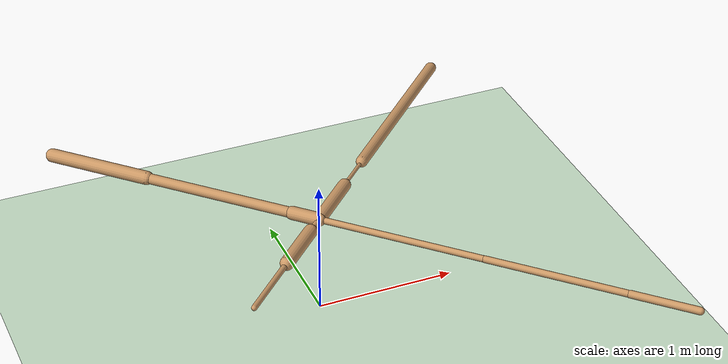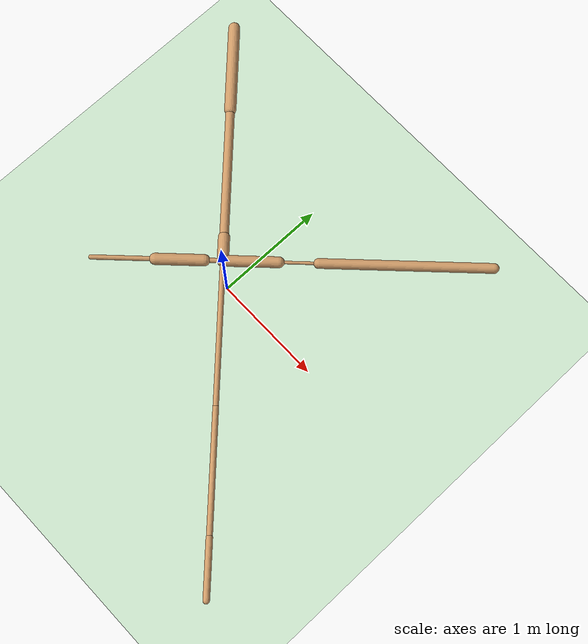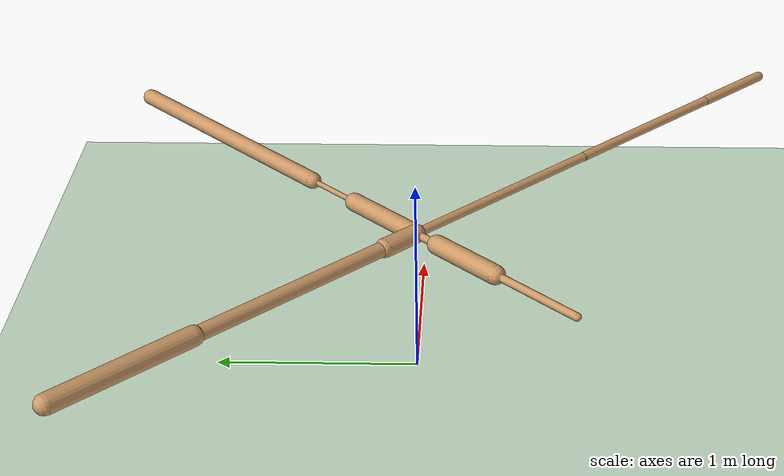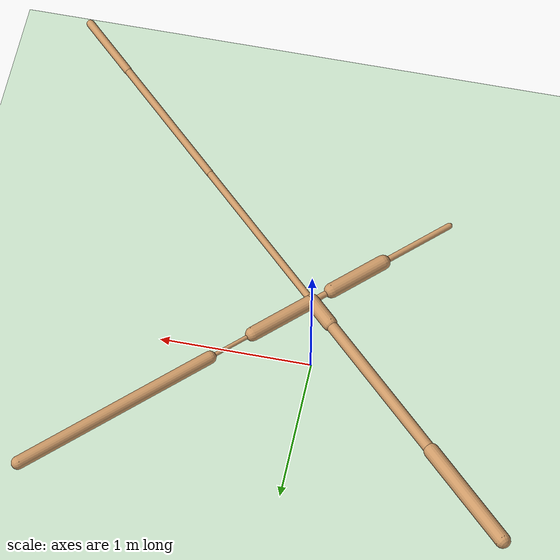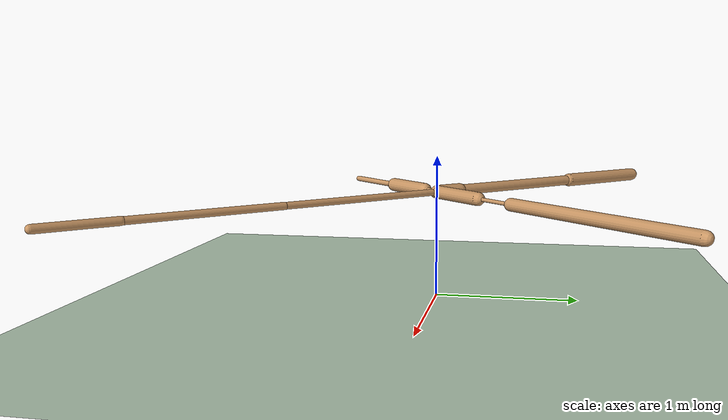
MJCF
<mujoco model="ant">
  <compiler angle="degree" coordinate="local" inertiafromgeom="true" />
  <option integrator="RK4" timestep="0.01" />
  <custom>
    <numeric data="0.0 0.0 0.55 1.0 0.0 0.0 0.0 0.0 1.0 0.0 -1.0 0.0 -1.0 0.0 1.0" name="init_qpos" />
  </custom>
  <default>
    <joint armature="1" damping="1" limited="true" />
    <geom conaffinity="0" condim="3" density="5.0" friction="1 0.5 0.5" margin="0.01" rgba="0.8 0.6 0.4 1" />
  </default>
  <asset>
    <texture builtin="gradient" height="100" rgb1="1 1 1" rgb2="0 0 0" type="skybox" width="100" />
    <texture builtin="flat" height="1278" mark="cross" markrgb="1 1 1" name="texgeom" random="0.01" rgb1="0.8 0.6 0.4" rgb2="0.8 0.6 0.4" type="cube" width="127" />
    <texture builtin="checker" height="100" name="texplane" rgb1="0 0 0" rgb2="0.8 0.8 0.8" type="2d" width="100" />
    <material name="MatPlane" reflectance="0.5" shininess="1" specular="1" texrepeat="60 60" texture="texplane" />
    <material name="geom" texture="texgeom" texuniform="true" />
  </asset>
  <worldbody>
    <light cutoff="100" diffuse="1 1 1" dir="-0 0 -1.3" directional="true" exponent="1" pos="0 0 1.3" specular=".1 .1 .1" />
    <geom conaffinity="1" condim="3" material="MatPlane" name="floor" pos="0 0 0" rgba="0.8 0.9 0.8 1" size="40 40 40" type="plane" />
    <body name="torso" pos="0 0 0.75">
      <camera name="track" mode="trackcom" pos="0 -11 5" xyaxes="1 0 0 0 0.5 1" />
      <geom name="torso_geom" pos="0 0 0" size="0.03846017271280289" type="sphere" />
      <joint armature="0" damping="0" limited="false" margin="0.01" name="root" pos="0 0 0" type="free" />
      <body name="front_left_leg" pos="0 0 0">
        <geom fromto="0 0 0 0.3168320059776306 0.3168320059776306 0" name="aux_1_geom" size="0.04603034257888794" type="capsule" />
        <body name="aux_1" pos="0.3168320059776306 0.3168320059776306 0">
          <joint axis="0 0 1" name="hip_1" pos="0.0 0.0 0.0" range="-30 30" type="hinge" />
          <geom fromto="0 0 0 0.2250727117061615 0.2250727117061615 0" name="left_leg_geom" size="0.012946812435984612" type="capsule" />
          <body name="left_leg_geom_aux" pos="0.2250727117061615 0.2250727117061615 0">
            <joint axis="-1 1 0" name="ankle_1" pos="0.0 0.0 0.0" range="30 70" type="hinge" />
            <geom fromto="0 0 0 0.9889194369316101 0.9889194369316101 0" name="left_ankle_geom" size="0.04176419973373413" type="capsule" />
          </body>
        </body>
      </body>
      <body name="front_right_leg" pos="0 0 0">
        <geom fromto="0 0 0 -0.1420498788356781 0.1420498788356781 0" name="aux_2_geom" size="0.04791170731186867" type="capsule" />
        <body name="aux_2" pos="-0.1420498788356781 0.1420498788356781 0">
          <joint axis="0 0 1" name="hip_2" pos="0.0 0.0 0.0" range="-30 30" type="hinge" />
          <geom fromto="0 0 0 -0.7914826273918152 0.7914826273918152 0" name="right_leg_geom" size="0.03759519010782242" type="capsule" />
          <body name="right_leg_geom_aux" pos="-0.7914826273918152 0.7914826273918152 0">
            <joint axis="1 1 0" name="ankle_2" pos="0.0 0.0 0.0" range="-70 -30" type="hinge" />
            <geom fromto="0 0 0 -0.5344678163528442 0.5344678163528442 0" name="right_ankle_geom" size="0.049275994300842285" type="capsule" />
          </body>
        </body>
      </body>
      <body name="back_leg" pos="0 0 0">
        <geom fromto="0 0 0 -0.10510425269603729 -0.10510425269603729 0" name="aux_3_geom" size="0.01995505765080452" type="capsule" />
        <body name="aux_3" pos="-0.10510425269603729 -0.10510425269603729 0">
          <joint axis="0 0 1" name="hip_3" pos="0.0 0.0 0.0" range="-30 30" type="hinge" />
          <geom fromto="0 0 0 -0.27738097310066223 -0.27738097310066223 0" name="back_leg_geom" size="0.04821525514125824" type="capsule" />
          <body name="back_leg_geom_aux" pos="-0.27738097310066223 -0.27738097310066223 0">
            <joint axis="-1 1 0" name="ankle_3" pos="0.0 0.0 0.0" range="-70 -30" type="hinge" />
            <geom fromto="0 0 0 -0.36359715461730957 -0.36359715461730957 0" name="third_ankle_geom" size="0.019754527136683464" type="capsule" />
          </body>
        </body>
      </body>
      <body name="right_back_leg" pos="0 0 0">
        <geom fromto="0 0 0 0.842642068862915 -0.842642068862915 0" name="aux_4_geom" size="0.023070935159921646" type="capsule" />
        <body name="aux_4" pos="0.842642068862915 -0.842642068862915 0">
          <joint axis="0 0 1" name="hip_4" pos="0.0 0.0 0.0" range="-30 30" type="hinge" />
          <geom fromto="0 0 0 0.7052298784255981 -0.7052298784255981 0" name="rightback_leg_geom" size="0.024399660527706146" type="capsule" />
          <body name="rightback_leg_geom_aux" pos="0.7052298784255981 -0.7052298784255981 0">
            <joint axis="1 1 0" name="ankle_4" pos="0.0 0.0 0.0" range="30 70" type="hinge" />
            <geom fromto="0 0 0 0.3282884955406189 -0.3282884955406189 0" name="fourth_ankle_geom" size="0.0268513485789299" type="capsule" />
          </body>
        </body>
      </body>
    </body>
  </worldbody>
  <actuator>
    <motor ctrllimited="true" ctrlrange="-1.0 1.0" joint="hip_4" gear="150" />
    <motor ctrllimited="true" ctrlrange="-1.0 1.0" joint="ankle_4" gear="150" />
    <motor ctrllimited="true" ctrlrange="-1.0 1.0" joint="hip_1" gear="150" />
    <motor ctrllimited="true" ctrlrange="-1.0 1.0" joint="ankle_1" gear="150" />
    <motor ctrllimited="true" ctrlrange="-1.0 1.0" joint="hip_2" gear="150" />
    <motor ctrllimited="true" ctrlrange="-1.0 1.0" joint="ankle_2" gear="150" />
    <motor ctrllimited="true" ctrlrange="-1.0 1.0" joint="hip_3" gear="150" />
    <motor ctrllimited="true" ctrlrange="-1.0 1.0" joint="ankle_3" gear="150" />
  </actuator>
</mujoco>
